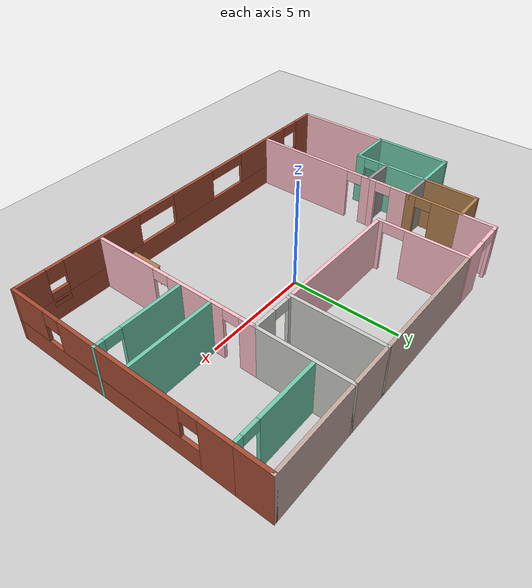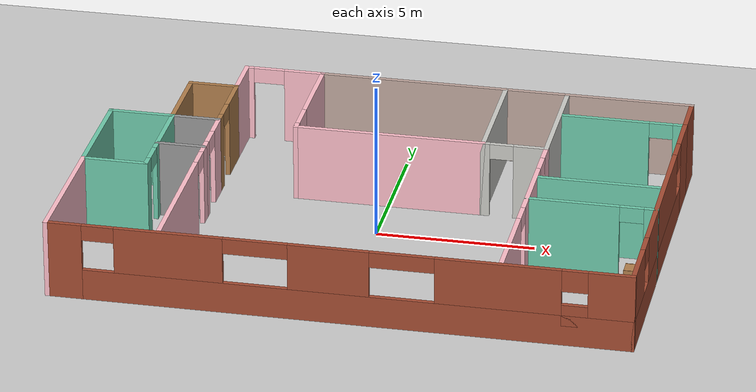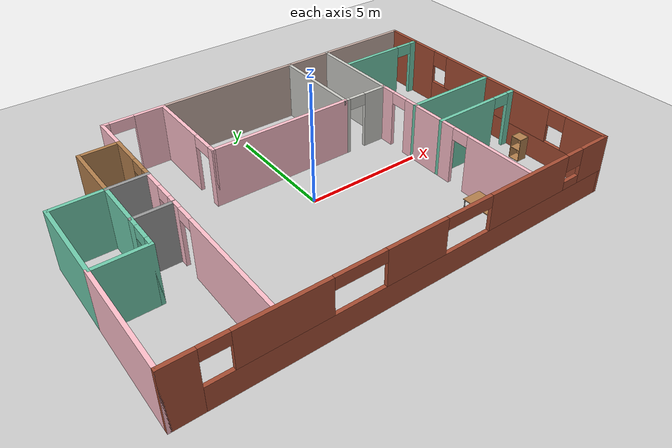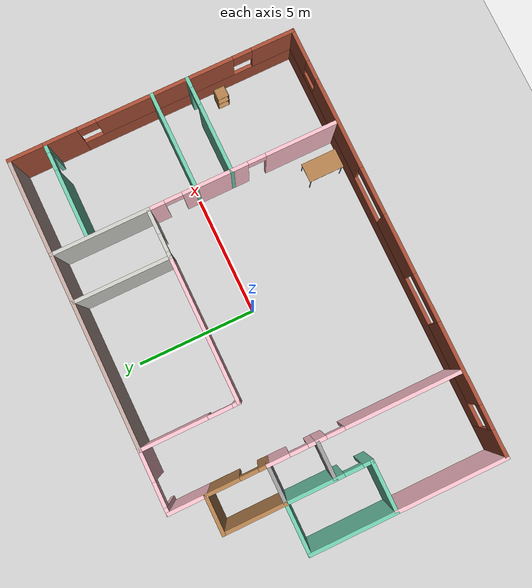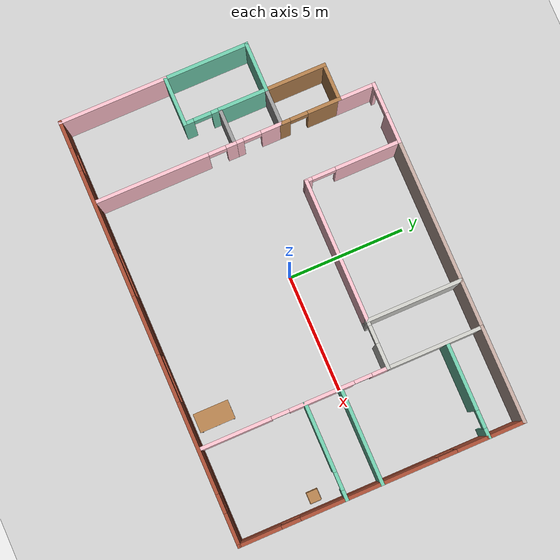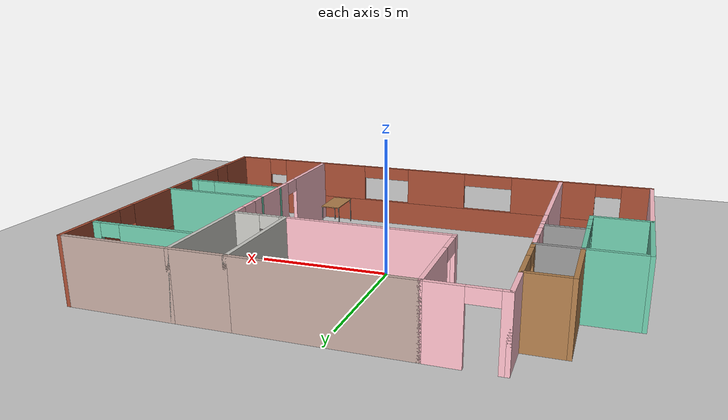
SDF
<sdf version="1.6">
 <world name="default">
  <model name="ground_plane">
   <static>1</static>
   <link name="link">
    <collision name="collision">
     <geometry><plane><normal>0 0 1</normal><size>100 100</size></plane></geometry>
     <surface><friction><ode><mu>100</mu><mu2>50</mu2></ode></friction></surface>
    </collision>
    <visual name="visual">
     <cast_shadows>0</cast_shadows>
     <geometry><plane><normal>0 0 1</normal><size>100 100</size></plane></geometry>
     <material>
      <script><uri>file://media/materials/scripts/gazebo.material</uri><name>Gazebo/Grey</name></script>
     </material>
    </visual>
   </link>
  </model>
  <model name="DaBldg">
   <link name="Wall_0">
    <collision name="Wall_0_Collision">
     <geometry><box><size>4.65 0.15 2.5</size></box></geometry>
     <pose>0 0 1.25 0 -0 0</pose>
    </collision>
    <visual name="Wall_0_Visual">
     <pose>0 0 1.25 0 -0 0</pose>
     <geometry><box><size>4.65 0.15 2.5</size></box></geometry>
     <material>
      <script><uri>file://media/materials/scripts/gazebo.material</uri><name>Gazebo/Grey</name></script>
      <ambient>1 0.752941 0.796078 1</ambient>
     </material>
     <meta><layer>0</layer></meta>
    </visual>
    <pose>-9 -3.75 0 0 -0 1.5708</pose>
   </link>
   <link name="Wall_10">
    <collision name="Wall_10_Collision">
     <geometry><box><size>1.65 0.15 2.5</size></box></geometry>
     <pose>0 0 1.25 0 -0 0</pose>
    </collision>
    <visual name="Wall_10_Visual">
     <pose>0 0 1.25 0 -0 0</pose>
     <geometry><box><size>1.65 0.15 2.5</size></box></geometry>
     <material>
      <script><uri>file://media/materials/scripts/gazebo.material</uri><name>Gazebo/Grey</name></script>
      <ambient>1 1 1 1</ambient>
     </material>
     <meta><layer>0</layer></meta>
    </visual>
    <pose>-6.25 0 0 0 -0 0</pose>
   </link>
   <link name="Wall_12">
    <pose>-5.5 -2.925 0 0 0 -1.5708</pose>
    <visual name="Wall_12_Visual_0">
     <pose>-2.775 0 1.25 0 -0 0</pose>
     <geometry><box><size>0.45 0.15 2.5</size></box></geometry>
     <material>
      <script><uri>file://media/materials/scripts/gazebo.material</uri><name>Gazebo/Grey</name></script>
      <ambient>1 0.752941 0.796078 1</ambient>
     </material>
     <meta><layer>0</layer></meta>
    </visual>
    <collision name="Wall_12_Collision_0">
     <geometry><box><size>0.45 0.15 2.5</size></box></geometry>
     <pose>-2.775 0 1.25 0 -0 0</pose>
    </collision>
    <visual name="Wall_12_Visual_1">
     <pose>0.6 0 1.25 0 -0 0</pose>
     <geometry><box><size>4.8 0.15 2.5</size></box></geometry>
     <material>
      <script><uri>file://media/materials/scripts/gazebo.material</uri><name>Gazebo/Grey</name></script>
      <ambient>1 0.752941 0.796078 1</ambient>
     </material>
     <meta><layer>0</layer></meta>
    </visual>
    <collision name="Wall_12_Collision_1">
     <geometry><box><size>4.8 0.15 2.5</size></box></geometry>
     <pose>0.6 0 1.25 0 -0 0</pose>
    </collision>
    <visual name="Wall_12_Visual_2">
     <pose>-2.175 0 2.25 0 -0 0</pose>
     <geometry><box><size>0.75 0.15 0.5</size></box></geometry>
     <material>
      <script><uri>file://media/materials/scripts/gazebo.material</uri><name>Gazebo/Grey</name></script>
      <ambient>1 0.752941 0.796078 1</ambient>
     </material>
     <meta><layer>0</layer></meta>
    </visual>
    <collision name="Wall_12_Collision_2">
     <geometry><box><size>0.75 0.15 0.5</size></box></geometry>
     <pose>-2.175 0 2.25 0 -0 0</pose>
    </collision>
   </link>
   <link name="Wall_14">
    <collision name="Wall_14_Collision">
     <geometry><box><size>3.65 0.15 2.5</size></box></geometry>
     <pose>0 0 1.25 0 -0 0</pose>
    </collision>
    <visual name="Wall_14_Visual">
     <pose>0 0 1.25 0 -0 0</pose>
     <geometry><box><size>3.65 0.15 2.5</size></box></geometry>
     <material>
      <script><uri>file://media/materials/scripts/gazebo.material</uri><name>Gazebo/Grey</name></script>
      <ambient>0.435294 0.796078 0.67451 1</ambient>
     </material>
     <meta><layer>0</layer></meta>
    </visual>
    <pose>-9 0.25 0 0 -0 1.5708</pose>
   </link>
   <link name="Wall_16">
    <collision name="Wall_16_Collision">
     <geometry><box><size>2.15 0.15 2.5</size></box></geometry>
     <pose>0 0 1.25 0 -0 0</pose>
    </collision>
    <visual name="Wall_16_Visual">
     <pose>0 0 1.25 0 -0 0</pose>
     <geometry><box><size>2.15 0.15 2.5</size></box></geometry>
     <material>
      <script><uri>file://media/materials/scripts/gazebo.material</uri><name>Gazebo/Grey</name></script>
      <ambient>0.435294 0.796078 0.67451 1</ambient>
     </material>
     <meta><layer>0</layer></meta>
    </visual>
    <pose>-8 2 0 0 -0 0</pose>
   </link>
   <link name="Wall_18">
    <collision name="Wall_18_Collision">
     <geometry><box><size>2.15 0.15 2.5</size></box></geometry>
     <pose>0 0 1.25 0 -0 0</pose>
    </collision>
    <visual name="Wall_18_Visual">
     <pose>0 0 1.25 0 -0 0</pose>
     <geometry><box><size>2.15 0.15 2.5</size></box></geometry>
     <material>
      <script><uri>file://media/materials/scripts/gazebo.material</uri><name>Gazebo/Grey</name></script>
      <ambient>0.435294 0.796078 0.67451 1</ambient>
     </material>
     <meta><layer>0</layer></meta>
    </visual>
    <pose>-7 1 0 0 -0 1.5708</pose>
   </link>
   <link name="Wall_2">
    <pose>0 -6 0 0 -0 0</pose>
    <visual name="Wall_2_Visual_0">
     <pose>-8.47605 0 1.25 0 -0 0</pose>
     <geometry><box><size>1.19789 0.15 2.5</size></box></geometry>
     <material>
      <script><uri>file://media/materials/scripts/gazebo.material</uri><name>Gazebo/Bricks</name></script>
      <ambient>1 1 1 1</ambient>
     </material>
     <meta><layer>0</layer></meta>
    </visual>
    <collision name="Wall_2_Collision_0">
     <geometry><box><size>1.19789 0.15 2.5</size></box></geometry>
     <pose>-8.47605 0 1.25 0 -0 0</pose>
    </collision>
    <visual name="Wall_2_Visual_1">
     <pose>0.598946 0 0.5 0 -0 0</pose>
     <geometry><box><size>16.9521 0.15 1</size></box></geometry>
     <material>
      <script><uri>file://media/materials/scripts/gazebo.material</uri><name>Gazebo/Bricks</name></script>
      <ambient>1 1 1 1</ambient>
     </material>
     <meta><layer>0</layer></meta>
    </visual>
    <collision name="Wall_2_Collision_1">
     <geometry><box><size>16.9521 0.15 1</size></box></geometry>
     <pose>0.598946 0 0.5 0 -0 0</pose>
    </collision>
    <visual name="Wall_2_Visual_2">
     <pose>-5.18855 0 1.75 0 -0 0</pose>
     <geometry><box><size>3.37711 0.15 1.5</size></box></geometry>
     <material>
      <script><uri>file://media/materials/scripts/gazebo.material</uri><name>Gazebo/Bricks</name></script>
      <ambient>1 1 1 1</ambient>
     </material>
     <meta><layer>0</layer></meta>
    </visual>
    <collision name="Wall_2_Collision_2">
     <geometry><box><size>3.37711 0.15 1.5</size></box></geometry>
     <pose>-5.18855 0 1.75 0 -0 0</pose>
    </collision>
    <visual name="Wall_2_Visual_3">
     <pose>-0.25 0 1.75 0 -0 0</pose>
     <geometry><box><size>2.5 0.15 1.5</size></box></geometry>
     <material>
      <script><uri>file://media/materials/scripts/gazebo.material</uri><name>Gazebo/Bricks</name></script>
      <ambient>1 1 1 1</ambient>
     </material>
     <meta><layer>0</layer></meta>
    </visual>
    <collision name="Wall_2_Collision_3">
     <geometry><box><size>2.5 0.15 1.5</size></box></geometry>
     <pose>-0.25 0 1.75 0 -0 0</pose>
    </collision>
    <visual name="Wall_2_Visual_4">
     <pose>4.925 0 1.75 0 -0 0</pose>
     <geometry><box><size>3.85 0.15 1.5</size></box></geometry>
     <material>
      <script><uri>file://media/materials/scripts/gazebo.material</uri><name>Gazebo/Bricks</name></script>
      <ambient>1 1 1 1</ambient>
     </material>
     <meta><layer>0</layer></meta>
    </visual>
    <collision name="Wall_2_Collision_4">
     <geometry><box><size>3.85 0.15 1.5</size></box></geometry>
     <pose>4.925 0 1.75 0 -0 0</pose>
    </collision>
    <visual name="Wall_2_Visual_5">
     <pose>8.3625 0 1.75 0 -0 0</pose>
     <geometry><box><size>1.425 0.15 1.5</size></box></geometry>
     <material>
      <script><uri>file://media/materials/scripts/gazebo.material</uri><name>Gazebo/Bricks</name></script>
      <ambient>1 1 1 1</ambient>
     </material>
     <meta><layer>0</layer></meta>
    </visual>
    <collision name="Wall_2_Collision_5">
     <geometry><box><size>1.425 0.15 1.5</size></box></geometry>
     <pose>8.3625 0 1.75 0 -0 0</pose>
    </collision>
    <visual name="Wall_2_Visual_6">
     <pose>7.25 0 1 0 -0 0</pose>
     <geometry><box><size>0.8 0.15 0.7</size></box></geometry>
     <material>
      <script><uri>file://media/materials/scripts/gazebo.material</uri><name>Gazebo/Bricks</name></script>
      <ambient>1 1 1 1</ambient>
     </material>
     <meta><layer>0</layer></meta>
    </visual>
    <collision name="Wall_2_Collision_6">
     <geometry><box><size>0.8 0.15 0.7</size></box></geometry>
     <pose>7.25 0 1 0 -0 0</pose>
    </collision>
    <visual name="Wall_2_Visual_7">
     <pose>7.25 0 2.15 0 -0 0</pose>
     <geometry><box><size>0.8 0.15 0.7</size></box></geometry>
     <material>
      <script><uri>file://media/materials/scripts/gazebo.material</uri><name>Gazebo/Bricks</name></script>
      <ambient>1 1 1 1</ambient>
     </material>
     <meta><layer>0</layer></meta>
    </visual>
    <collision name="Wall_2_Collision_7">
     <geometry><box><size>0.8 0.15 0.7</size></box></geometry>
     <pose>7.25 0 2.15 0 -0 0</pose>
    </collision>
    <visual name="Wall_2_Visual_8">
     <pose>-7.37711 0 2.25 0 -0 0</pose>
     <geometry><box><size>1 0.15 0.5</size></box></geometry>
     <material>
      <script><uri>file://media/materials/scripts/gazebo.material</uri><name>Gazebo/Bricks</name></script>
      <ambient>1 1 1 1</ambient>
     </material>
     <meta><layer>0</layer></meta>
    </visual>
    <collision name="Wall_2_Collision_8">
     <geometry><box><size>1 0.15 0.5</size></box></geometry>
     <pose>-7.37711 0 2.25 0 -0 0</pose>
    </collision>
    <visual name="Wall_2_Visual_9">
     <pose>-2.5 0 2.25 0 -0 0</pose>
     <geometry><box><size>2 0.15 0.5</size></box></geometry>
     <material>
      <script><uri>file://media/materials/scripts/gazebo.material</uri><name>Gazebo/Bricks</name></script>
      <ambient>1 1 1 1</ambient>
     </material>
     <meta><layer>0</layer></meta>
    </visual>
    <collision name="Wall_2_Collision_9">
     <geometry><box><size>2 0.15 0.5</size></box></geometry>
     <pose>-2.5 0 2.25 0 -0 0</pose>
    </collision>
    <visual name="Wall_2_Visual_10">
     <pose>2 0 2.25 0 -0 0</pose>
     <geometry><box><size>2 0.15 0.5</size></box></geometry>
     <material>
      <script><uri>file://media/materials/scripts/gazebo.material</uri><name>Gazebo/Bricks</name></script>
      <ambient>1 1 1 1</ambient>
     </material>
     <meta><layer>0</layer></meta>
    </visual>
    <collision name="Wall_2_Collision_10">
     <geometry><box><size>2 0.15 0.5</size></box></geometry>
     <pose>2 0 2.25 0 -0 0</pose>
    </collision>
   </link>
   <link name="Wall_20">
    <collision name="Wall_20_Collision">
     <geometry><box><size>1.65 0.15 2.5</size></box></geometry>
     <pose>0 0 1.25 0 -0 0</pose>
    </collision>
    <visual name="Wall_20_Visual">
     <pose>0 0 1.25 0 -0 0</pose>
     <geometry><box><size>1.65 0.15 2.5</size></box></geometry>
     <material>
      <script><uri>file://media/materials/scripts/gazebo.material</uri><name>Gazebo/Grey</name></script>
      <ambient>1 1 1 1</ambient>
     </material>
     <meta><layer>0</layer></meta>
    </visual>
    <pose>-6.25 2 0 0 -0 0</pose>
   </link>
   <link name="Wall_22">
    <pose>-5.5 1 0 0 0 -1.5708</pose>
    <visual name="Wall_22_Visual_0">
     <pose>-0.6 0 1.25 0 -0 0</pose>
     <geometry><box><size>0.95 0.15 2.5</size></box></geometry>
     <material>
      <script><uri>file://media/materials/scripts/gazebo.material</uri><name>Gazebo/Grey</name></script>
      <ambient>1 0.752941 0.796078 1</ambient>
     </material>
     <meta><layer>0</layer></meta>
    </visual>
    <collision name="Wall_22_Collision_0">
     <geometry><box><size>0.95 0.15 2.5</size></box></geometry>
     <pose>-0.6 0 1.25 0 -0 0</pose>
    </collision>
    <visual name="Wall_22_Visual_1">
     <pose>0.85 0 1.25 0 -0 0</pose>
     <geometry><box><size>0.45 0.15 2.5</size></box></geometry>
     <material>
      <script><uri>file://media/materials/scripts/gazebo.material</uri><name>Gazebo/Grey</name></script>
      <ambient>1 0.752941 0.796078 1</ambient>
     </material>
     <meta><layer>0</layer></meta>
    </visual>
    <collision name="Wall_22_Collision_1">
     <geometry><box><size>0.45 0.15 2.5</size></box></geometry>
     <pose>0.85 0 1.25 0 -0 0</pose>
    </collision>
    <visual name="Wall_22_Visual_2">
     <pose>0.25 0 2.25 0 -0 0</pose>
     <geometry><box><size>0.75 0.15 0.5</size></box></geometry>
     <material>
      <script><uri>file://media/materials/scripts/gazebo.material</uri><name>Gazebo/Grey</name></script>
      <ambient>1 0.752941 0.796078 1</ambient>
     </material>
     <meta><layer>0</layer></meta>
    </visual>
    <collision name="Wall_22_Collision_2">
     <geometry><box><size>0.75 0.15 0.5</size></box></geometry>
     <pose>0.25 0 2.25 0 -0 0</pose>
    </collision>
   </link>
   <link name="Wall_24">
    <pose>-5.5 3.25 0 0 -0 1.5708</pose>
    <visual name="Wall_24_Visual_0">
     <pose>-1.09518 0 1.25 0 -0 0</pose>
     <geometry><box><size>0.459635 0.15 2.5</size></box></geometry>
     <material>
      <script><uri>file://media/materials/scripts/gazebo.material</uri><name>Gazebo/Wood</name></script>
      <ambient>1 1 1 1</ambient>
     </material>
     <meta><layer>0</layer></meta>
    </visual>
    <collision name="Wall_24_Collision_0">
     <geometry><box><size>0.459635 0.15 2.5</size></box></geometry>
     <pose>-1.09518 0 1.25 0 -0 0</pose>
    </collision>
    <visual name="Wall_24_Visual_1">
     <pose>0.604817 0 1.25 0 -0 0</pose>
     <geometry><box><size>1.44036 0.15 2.5</size></box></geometry>
     <material>
      <script><uri>file://media/materials/scripts/gazebo.material</uri><name>Gazebo/Wood</name></script>
      <ambient>1 1 1 1</ambient>
     </material>
     <meta><layer>0</layer></meta>
    </visual>
    <collision name="Wall_24_Collision_1">
     <geometry><box><size>1.44036 0.15 2.5</size></box></geometry>
     <pose>0.604817 0 1.25 0 -0 0</pose>
    </collision>
    <visual name="Wall_24_Visual_2">
     <pose>-0.490365 0 2.25 0 -0 0</pose>
     <geometry><box><size>0.75 0.15 0.5</size></box></geometry>
     <material>
      <script><uri>file://media/materials/scripts/gazebo.material</uri><name>Gazebo/Wood</name></script>
      <ambient>1 1 1 1</ambient>
     </material>
     <meta><layer>0</layer></meta>
    </visual>
    <collision name="Wall_24_Collision_2">
     <geometry><box><size>0.75 0.15 0.5</size></box></geometry>
     <pose>-0.490365 0 2.25 0 -0 0</pose>
    </collision>
   </link>
   <link name="Wall_38">
    <collision name="Wall_38_Collision">
     <geometry><box><size>2.65 0.15 2.5</size></box></geometry>
     <pose>0 0 1.25 0 -0 0</pose>
    </collision>
    <visual name="Wall_38_Visual">
     <pose>0 0 1.25 0 -0 0</pose>
     <geometry><box><size>2.65 0.15 2.5</size></box></geometry>
     <material>
      <script><uri>file://media/materials/scripts/gazebo.material</uri><name>Gazebo/Wood</name></script>
      <ambient>0.760784 0.662745 0.627451 1</ambient>
     </material>
     <meta><layer>0</layer></meta>
    </visual>
    <pose>-7 3.25 0 0 -0 1.5708</pose>
   </link>
   <link name="Wall_40">
    <collision name="Wall_40_Collision">
     <geometry><box><size>1.65 0.15 2.5</size></box></geometry>
     <pose>0 0 1.25 0 -0 0</pose>
    </collision>
    <visual name="Wall_40_Visual">
     <pose>0 0 1.25 0 -0 0</pose>
     <geometry><box><size>1.65 0.15 2.5</size></box></geometry>
     <material>
      <script><uri>file://media/materials/scripts/gazebo.material</uri><name>Gazebo/Wood</name></script>
      <ambient>1 1 1 1</ambient>
     </material>
     <meta><layer>0</layer></meta>
    </visual>
    <pose>-6.25 4.5 0 0 -0 0</pose>
   </link>
   <link name="Wall_44">
    <collision name="Wall_44_Collision">
     <geometry><box><size>1.65 0.15 2.5</size></box></geometry>
     <pose>0 0 1.25 0 -0 0</pose>
    </collision>
    <visual name="Wall_44_Visual">
     <pose>0 0 1.25 0 -0 0</pose>
     <geometry><box><size>1.65 0.15 2.5</size></box></geometry>
     <material>
      <script><uri>file://media/materials/scripts/gazebo.material</uri><name>Gazebo/Grey</name></script>
      <ambient>1 0.752941 0.796078 1</ambient>
     </material>
     <meta><layer>0</layer></meta>
    </visual>
    <pose>-5.5 5.25 0 0 -0 1.5708</pose>
   </link>
   <link name="Wall_47">
    <pose>-4.25 6 0 0 -0 0</pose>
    <visual name="Wall_47_Visual_0">
     <pose>-1.1625 0 1.25 0 -0 0</pose>
     <geometry><box><size>0.325 0.15 2.5</size></box></geometry>
     <material>
      <script><uri>file://media/materials/scripts/gazebo.material</uri><name>Gazebo/Grey</name></script>
      <ambient>1 0.752941 0.796078 1</ambient>
     </material>
     <meta><layer>0</layer></meta>
    </visual>
    <collision name="Wall_47_Collision_0">
     <geometry><box><size>0.325 0.15 2.5</size></box></geometry>
     <pose>-1.1625 0 1.25 0 -0 0</pose>
    </collision>
    <visual name="Wall_47_Visual_1">
     <pose>0.6625 0 1.25 0 -0 0</pose>
     <geometry><box><size>1.325 0.15 2.5</size></box></geometry>
     <material>
      <script><uri>file://media/materials/scripts/gazebo.material</uri><name>Gazebo/Grey</name></script>
      <ambient>1 0.752941 0.796078 1</ambient>
     </material>
     <meta><layer>0</layer></meta>
    </visual>
    <collision name="Wall_47_Collision_1">
     <geometry><box><size>1.325 0.15 2.5</size></box></geometry>
     <pose>0.6625 0 1.25 0 -0 0</pose>
    </collision>
    <visual name="Wall_47_Visual_2">
     <pose>-0.5 0 2.25 0 -0 0</pose>
     <geometry><box><size>1 0.15 0.5</size></box></geometry>
     <material>
      <script><uri>file://media/materials/scripts/gazebo.material</uri><name>Gazebo/Grey</name></script>
      <ambient>1 0.752941 0.796078 1</ambient>
     </material>
     <meta><layer>0</layer></meta>
    </visual>
    <collision name="Wall_47_Collision_2">
     <geometry><box><size>1 0.15 0.5</size></box></geometry>
     <pose>-0.5 0 2.25 0 -0 0</pose>
    </collision>
   </link>
   <link name="Wall_50">
    <pose>-3 4 0 0 0 -1.5708</pose>
    <visual name="Wall_50_Visual_0">
     <pose>-0.6625 0 1.25 0 -0 0</pose>
     <geometry><box><size>2.825 0.15 2.5</size></box></geometry>
     <material>
      <script><uri>file://media/materials/scripts/gazebo.material</uri><name>Gazebo/Grey</name></script>
      <ambient>1 0.752941 0.796078 1</ambient>
     </material>
     <meta><layer>0</layer></meta>
    </visual>
    <collision name="Wall_50_Collision_0">
     <geometry><box><size>2.825 0.15 2.5</size></box></geometry>
     <pose>-0.6625 0 1.25 0 -0 0</pose>
    </collision>
    <visual name="Wall_50_Visual_1">
     <pose>1.9125 0 1.25 0 -0 0</pose>
     <geometry><box><size>0.325 0.15 2.5</size></box></geometry>
     <material>
      <script><uri>file://media/materials/scripts/gazebo.material</uri><name>Gazebo/Grey</name></script>
      <ambient>1 0.752941 0.796078 1</ambient>
     </material>
     <meta><layer>0</layer></meta>
    </visual>
    <collision name="Wall_50_Collision_1">
     <geometry><box><size>0.325 0.15 2.5</size></box></geometry>
     <pose>1.9125 0 1.25 0 -0 0</pose>
    </collision>
    <visual name="Wall_50_Visual_2">
     <pose>1.25 0 2.25 0 -0 0</pose>
     <geometry><box><size>1 0.15 0.5</size></box></geometry>
     <material>
      <script><uri>file://media/materials/scripts/gazebo.material</uri><name>Gazebo/Grey</name></script>
      <ambient>1 0.752941 0.796078 1</ambient>
     </material>
     <meta><layer>0</layer></meta>
    </visual>
    <collision name="Wall_50_Collision_2">
     <geometry><box><size>1 0.15 0.5</size></box></geometry>
     <pose>1.25 0 2.25 0 -0 0</pose>
    </collision>
   </link>
   <link name="Wall_52">
    <collision name="Wall_52_Collision">
     <geometry><box><size>6.15 0.15 2.5</size></box></geometry>
     <pose>0 0 1.25 0 -0 0</pose>
    </collision>
    <visual name="Wall_52_Visual">
     <pose>0 0 1.25 0 -0 0</pose>
     <geometry><box><size>6.15 0.15 2.5</size></box></geometry>
     <material>
      <script><uri>file://media/materials/scripts/gazebo.material</uri><name>Gazebo/Grey</name></script>
      <ambient>0.760784 0.662745 0.627451 1</ambient>
     </material>
     <meta><layer>0</layer></meta>
    </visual>
    <pose>0 6 0 0 -0 0</pose>
   </link>
   <link name="Wall_54">
    <collision name="Wall_54_Collision">
     <geometry><box><size>4.15 0.15 2.5</size></box></geometry>
     <pose>0 0 1.25 0 -0 0</pose>
    </collision>
    <visual name="Wall_54_Visual">
     <pose>0 0 1.25 0 -0 0</pose>
     <geometry><box><size>4.15 0.15 2.5</size></box></geometry>
     <material>
      <script><uri>file://media/materials/scripts/gazebo.material</uri><name>Gazebo/CeilingTiled</name></script>
      <ambient>1 1 1 1</ambient>
     </material>
     <meta><layer>0</layer></meta>
    </visual>
    <pose>3 4 0 0 0 -1.5708</pose>
   </link>
   <link name="Wall_57">
    <collision name="Wall_57_Collision">
     <geometry><box><size>6.15 0.15 2.5</size></box></geometry>
     <pose>0 0 1.25 0 -0 0</pose>
    </collision>
    <visual name="Wall_57_Visual">
     <pose>0 0 1.25 0 -0 0</pose>
     <geometry><box><size>6.15 0.15 2.5</size></box></geometry>
     <material>
      <script><uri>file://media/materials/scripts/gazebo.material</uri><name>Gazebo/Grey</name></script>
      <ambient>1 0.752941 0.796078 1</ambient>
     </material>
     <meta><layer>0</layer></meta>
    </visual>
    <pose>0 2 0 0 -0 0</pose>
   </link>
   <link name="Wall_59">
    <collision name="Wall_59_Collision">
     <geometry><box><size>2.15 0.15 2.5</size></box></geometry>
     <pose>0 0 1.25 0 -0 0</pose>
    </collision>
    <visual name="Wall_59_Visual">
     <pose>0 0 1.25 0 -0 0</pose>
     <geometry><box><size>2.15 0.15 2.5</size></box></geometry>
     <material>
      <script><uri>file://media/materials/scripts/gazebo.material</uri><name>Gazebo/Grey</name></script>
      <ambient>0.760784 0.662745 0.627451 1</ambient>
     </material>
     <meta><layer>0</layer></meta>
    </visual>
    <pose>4 6 0 0 -0 0</pose>
   </link>
   <link name="Wall_6">
    <collision name="Wall_6_Collision">
     <geometry><box><size>2.15 0.15 2.5</size></box></geometry>
     <pose>0 0 1.25 0 -0 0</pose>
    </collision>
    <visual name="Wall_6_Visual">
     <pose>0 0 1.25 0 -0 0</pose>
     <geometry><box><size>2.15 0.15 2.5</size></box></geometry>
     <material>
      <script><uri>file://media/materials/scripts/gazebo.material</uri><name>Gazebo/Grey</name></script>
      <ambient>0.435294 0.796078 0.67451 1</ambient>
     </material>
     <meta><layer>0</layer></meta>
    </visual>
    <pose>-8 -1.5 0 0 -0 0</pose>
   </link>
   <link name="Wall_61">
    <collision name="Wall_61_Collision">
     <geometry><box><size>4.15 0.15 2.5</size></box></geometry>
     <pose>0 0 1.25 0 -0 0</pose>
    </collision>
    <visual name="Wall_61_Visual">
     <pose>0 0 1.25 0 -0 0</pose>
     <geometry><box><size>4.15 0.15 2.5</size></box></geometry>
     <material>
      <script><uri>file://media/materials/scripts/gazebo.material</uri><name>Gazebo/CeilingTiled</name></script>
      <ambient>1 1 1 1</ambient>
     </material>
     <meta><layer>0</layer></meta>
    </visual>
    <pose>5 4 0 0 0 -1.5708</pose>
   </link>
   <link name="Wall_65">
    <pose>4 2 0 0 -0 0</pose>
    <visual name="Wall_65_Visual_0">
     <pose>-0.928066 0 1.25 0 -0 0</pose>
     <geometry><box><size>0.293867 0.15 2.5</size></box></geometry>
     <material>
      <script><uri>file://media/materials/scripts/gazebo.material</uri><name>Gazebo/CeilingTiled</name></script>
      <ambient>1 1 1 1</ambient>
     </material>
     <meta><layer>0</layer></meta>
    </visual>
    <collision name="Wall_65_Collision_0">
     <geometry><box><size>0.293867 0.15 2.5</size></box></geometry>
     <pose>-0.928066 0 1.25 0 -0 0</pose>
    </collision>
    <visual name="Wall_65_Visual_1">
     <pose>0.521934 0 1.25 0 -0 0</pose>
     <geometry><box><size>1.10613 0.15 2.5</size></box></geometry>
     <material>
      <script><uri>file://media/materials/scripts/gazebo.material</uri><name>Gazebo/CeilingTiled</name></script>
      <ambient>1 1 1 1</ambient>
     </material>
     <meta><layer>0</layer></meta>
    </visual>
    <collision name="Wall_65_Collision_1">
     <geometry><box><size>1.10613 0.15 2.5</size></box></geometry>
     <pose>0.521934 0 1.25 0 -0 0</pose>
    </collision>
    <visual name="Wall_65_Visual_2">
     <pose>-0.406133 0 2.25 0 -0 0</pose>
     <geometry><box><size>0.75 0.15 0.5</size></box></geometry>
     <material>
      <script><uri>file://media/materials/scripts/gazebo.material</uri><name>Gazebo/CeilingTiled</name></script>
      <ambient>1 1 1 1</ambient>
     </material>
     <meta><layer>0</layer></meta>
    </visual>
    <collision name="Wall_65_Collision_2">
     <geometry><box><size>0.75 0.15 0.5</size></box></geometry>
     <pose>-0.406133 0 2.25 0 -0 0</pose>
    </collision>
   </link>
   <link name="Wall_67">
    <collision name="Wall_67_Collision">
     <geometry><box><size>4.15 0.15 2.5</size></box></geometry>
     <pose>0 0 1.25 0 -0 0</pose>
    </collision>
    <visual name="Wall_67_Visual">
     <pose>0 0 1.25 0 -0 0</pose>
     <geometry><box><size>4.15 0.15 2.5</size></box></geometry>
     <material>
      <script><uri>file://media/materials/scripts/gazebo.material</uri><name>Gazebo/Grey</name></script>
      <ambient>0.760784 0.662745 0.627451 1</ambient>
     </material>
     <meta><layer>0</layer></meta>
    </visual>
    <pose>7 6 0 0 -0 0</pose>
   </link>
   <link name="Wall_69">
    <collision name="Wall_69_Collision">
     <geometry><box><size>1.65 0.15 2.5</size></box></geometry>
     <pose>0 0 1.25 0 -0 0</pose>
    </collision>
    <visual name="Wall_69_Visual">
     <pose>0 0 1.25 0 -0 0</pose>
     <geometry><box><size>1.65 0.15 2.5</size></box></geometry>
     <material>
      <script><uri>file://media/materials/scripts/gazebo.material</uri><name>Gazebo/Bricks</name></script>
      <ambient>0.760784 0.662745 0.627451 1</ambient>
     </material>
     <meta><layer>0</layer></meta>
    </visual>
    <pose>9 5.25 0 0 0 -1.5708</pose>
   </link>
   <link name="Wall_72">
    <pose>7.075 4.5 0 0 -0 3.14159</pose>
    <visual name="Wall_72_Visual_0">
     <pose>-1.775 0 1.25 0 -0 0</pose>
     <geometry><box><size>0.450001 0.15 2.5</size></box></geometry>
     <material>
      <script><uri>file://media/materials/scripts/gazebo.material</uri><name>Gazebo/Grey</name></script>
      <ambient>0.435294 0.796078 0.67451 1</ambient>
     </material>
     <meta><layer>0</layer></meta>
    </visual>
    <collision name="Wall_72_Collision_0">
     <geometry><box><size>0.450001 0.15 2.5</size></box></geometry>
     <pose>-1.775 0 1.25 0 -0 0</pose>
    </collision>
    <visual name="Wall_72_Visual_1">
     <pose>0.6 0 1.25 0 -0 0</pose>
     <geometry><box><size>2.8 0.15 2.5</size></box></geometry>
     <material>
      <script><uri>file://media/materials/scripts/gazebo.material</uri><name>Gazebo/Grey</name></script>
      <ambient>0.435294 0.796078 0.67451 1</ambient>
     </material>
     <meta><layer>0</layer></meta>
    </visual>
    <collision name="Wall_72_Collision_1">
     <geometry><box><size>2.8 0.15 2.5</size></box></geometry>
     <pose>0.6 0 1.25 0 -0 0</pose>
    </collision>
    <visual name="Wall_72_Visual_2">
     <pose>-1.175 0 2.25 0 -0 0</pose>
     <geometry><box><size>0.75 0.15 0.5</size></box></geometry>
     <material>
      <script><uri>file://media/materials/scripts/gazebo.material</uri><name>Gazebo/Grey</name></script>
      <ambient>0.435294 0.796078 0.67451 1</ambient>
     </material>
     <meta><layer>0</layer></meta>
    </visual>
    <collision name="Wall_72_Collision_2">
     <geometry><box><size>0.75 0.15 0.5</size></box></geometry>
     <pose>-1.175 0 2.25 0 -0 0</pose>
    </collision>
   </link>
   <link name="Wall_74">
    <pose>9 -0.75 0 0 0 -1.5708</pose>
    <visual name="Wall_74_Visual_0">
     <pose>-4.61614 0 1.25 0 -0 0</pose>
     <geometry><box><size>1.41772 0.15 2.5</size></box></geometry>
     <material>
      <script><uri>file://media/materials/scripts/gazebo.material</uri><name>Gazebo/Bricks</name></script>
      <ambient>1 1 1 1</ambient>
     </material>
     <meta><layer>0</layer></meta>
    </visual>
    <collision name="Wall_74_Collision_0">
     <geometry><box><size>1.41772 0.15 2.5</size></box></geometry>
     <pose>-4.61614 0 1.25 0 -0 0</pose>
    </collision>
    <visual name="Wall_74_Visual_1">
     <pose>0.708862 0 0.5 0 -0 0</pose>
     <geometry><box><size>9.23228 0.15 1</size></box></geometry>
     <material>
      <script><uri>file://media/materials/scripts/gazebo.material</uri><name>Gazebo/Bricks</name></script>
      <ambient>1 1 1 1</ambient>
     </material>
     <meta><layer>0</layer></meta>
    </visual>
    <collision name="Wall_74_Collision_1">
     <geometry><box><size>9.23228 0.15 1</size></box></geometry>
     <pose>0.708862 0 0.5 0 -0 0</pose>
    </collision>
    <visual name="Wall_74_Visual_2">
     <pose>-0.215535 0 1.75 0 -0 0</pose>
     <geometry><box><size>5.78348 0.15 1.5</size></box></geometry>
     <material>
      <script><uri>file://media/materials/scripts/gazebo.material</uri><name>Gazebo/Bricks</name></script>
      <ambient>1 1 1 1</ambient>
     </material>
     <meta><layer>0</layer></meta>
    </visual>
    <collision name="Wall_74_Collision_2">
     <geometry><box><size>5.78348 0.15 1.5</size></box></geometry>
     <pose>-0.215535 0 1.75 0 -0 0</pose>
    </collision>
    <visual name="Wall_74_Visual_3">
     <pose>4.4006 0 1.75 0 -0 0</pose>
     <geometry><box><size>1.84879 0.15 1.5</size></box></geometry>
     <material>
      <script><uri>file://media/materials/scripts/gazebo.material</uri><name>Gazebo/Bricks</name></script>
      <ambient>1 1 1 1</ambient>
     </material>
     <meta><layer>0</layer></meta>
    </visual>
    <collision name="Wall_74_Collision_3">
     <geometry><box><size>1.84879 0.15 1.5</size></box></geometry>
     <pose>4.4006 0 1.75 0 -0 0</pose>
    </collision>
    <visual name="Wall_74_Visual_4">
     <pose>-3.50728 0 2.15 0 -0 0</pose>
     <geometry><box><size>0.8 0.15 0.7</size></box></geometry>
     <material>
      <script><uri>file://media/materials/scripts/gazebo.material</uri><name>Gazebo/Bricks</name></script>
      <ambient>1 1 1 1</ambient>
     </material>
     <meta><layer>0</layer></meta>
    </visual>
    <collision name="Wall_74_Collision_4">
     <geometry><box><size>0.8 0.15 0.7</size></box></geometry>
     <pose>-3.50728 0 2.15 0 -0 0</pose>
    </collision>
    <visual name="Wall_74_Visual_5">
     <pose>3.07621 0 2.15 0 -0 0</pose>
     <geometry><box><size>0.8 0.15 0.7</size></box></geometry>
     <material>
      <script><uri>file://media/materials/scripts/gazebo.material</uri><name>Gazebo/Bricks</name></script>
      <ambient>1 1 1 1</ambient>
     </material>
     <meta><layer>0</layer></meta>
    </visual>
    <collision name="Wall_74_Collision_5">
     <geometry><box><size>0.8 0.15 0.7</size></box></geometry>
     <pose>3.07621 0 2.15 0 -0 0</pose>
    </collision>
   </link>
   <link name="Wall_76">
    <pose>5 -1.925 0 0 0 -1.5708</pose>
    <visual name="Wall_76_Visual_0">
     <pose>-3.62243 0 1.25 0 -0 0</pose>
     <geometry><box><size>0.755143 0.15 2.5</size></box></geometry>
     <material>
      <script><uri>file://media/materials/scripts/gazebo.material</uri><name>Gazebo/Grey</name></script>
      <ambient>1 0.752941 0.796078 1</ambient>
     </material>
     <meta><layer>0</layer></meta>
    </visual>
    <collision name="Wall_76_Collision_0">
     <geometry><box><size>0.755143 0.15 2.5</size></box></geometry>
     <pose>-3.62243 0 1.25 0 -0 0</pose>
    </collision>
    <visual name="Wall_76_Visual_1">
     <pose>-1.11937 0 1.25 0 -0 0</pose>
     <geometry><box><size>2.75097 0.15 2.5</size></box></geometry>
     <material>
      <script><uri>file://media/materials/scripts/gazebo.material</uri><name>Gazebo/Grey</name></script>
      <ambient>1 0.752941 0.796078 1</ambient>
     </material>
     <meta><layer>0</layer></meta>
    </visual>
    <collision name="Wall_76_Collision_1">
     <geometry><box><size>2.75097 0.15 2.5</size></box></geometry>
     <pose>-1.11937 0 1.25 0 -0 0</pose>
    </collision>
    <visual name="Wall_76_Visual_2">
     <pose>2.50306 0 1.25 0 -0 0</pose>
     <geometry><box><size>2.99388 0.15 2.5</size></box></geometry>
     <material>
      <script><uri>file://media/materials/scripts/gazebo.material</uri><name>Gazebo/Grey</name></script>
      <ambient>1 0.752941 0.796078 1</ambient>
     </material>
     <meta><layer>0</layer></meta>
    </visual>
    <collision name="Wall_76_Collision_2">
     <geometry><box><size>2.99388 0.15 2.5</size></box></geometry>
     <pose>2.50306 0 1.25 0 -0 0</pose>
    </collision>
    <visual name="Wall_76_Visual_3">
     <pose>-2.86986 0 2.25 0 -0 0</pose>
     <geometry><box><size>0.75 0.15 0.5</size></box></geometry>
     <material>
      <script><uri>file://media/materials/scripts/gazebo.material</uri><name>Gazebo/Grey</name></script>
      <ambient>1 0.752941 0.796078 1</ambient>
     </material>
     <meta><layer>0</layer></meta>
    </visual>
    <collision name="Wall_76_Collision_3">
     <geometry><box><size>0.75 0.15 0.5</size></box></geometry>
     <pose>-2.86986 0 2.25 0 -0 0</pose>
    </collision>
    <visual name="Wall_76_Visual_4">
     <pose>0.631118 0 2.25 0 -0 0</pose>
     <geometry><box><size>0.75 0.15 0.5</size></box></geometry>
     <material>
      <script><uri>file://media/materials/scripts/gazebo.material</uri><name>Gazebo/Grey</name></script>
      <ambient>1 0.752941 0.796078 1</ambient>
     </material>
     <meta><layer>0</layer></meta>
    </visual>
    <collision name="Wall_76_Collision_4">
     <geometry><box><size>0.75 0.15 0.5</size></box></geometry>
     <pose>0.631118 0 2.25 0 -0 0</pose>
    </collision>
   </link>
   <link name="Wall_8">
    <pose>-7 -0.75 0 0 -0 1.5708</pose>
    <visual name="Wall_8_Visual_0">
     <pose>-0.6 0 1.25 0 -0 0</pose>
     <geometry><box><size>0.45 0.15 2.5</size></box></geometry>
     <material>
      <script><uri>file://media/materials/scripts/gazebo.material</uri><name>Gazebo/Grey</name></script>
      <ambient>0.435294 0.796078 0.67451 1</ambient>
     </material>
     <meta><layer>0</layer></meta>
    </visual>
    <collision name="Wall_8_Collision_0">
     <geometry><box><size>0.45 0.15 2.5</size></box></geometry>
     <pose>-0.6 0 1.25 0 -0 0</pose>
    </collision>
    <visual name="Wall_8_Visual_1">
     <pose>0.6 0 1.25 0 -0 0</pose>
     <geometry><box><size>0.45 0.15 2.5</size></box></geometry>
     <material>
      <script><uri>file://media/materials/scripts/gazebo.material</uri><name>Gazebo/Grey</name></script>
      <ambient>0.435294 0.796078 0.67451 1</ambient>
     </material>
     <meta><layer>0</layer></meta>
    </visual>
    <collision name="Wall_8_Collision_1">
     <geometry><box><size>0.45 0.15 2.5</size></box></geometry>
     <pose>0.6 0 1.25 0 -0 0</pose>
    </collision>
    <visual name="Wall_8_Visual_2">
     <pose>0 0 2.25 0 -0 0</pose>
     <geometry><box><size>0.75 0.15 0.5</size></box></geometry>
     <material>
      <script><uri>file://media/materials/scripts/gazebo.material</uri><name>Gazebo/Grey</name></script>
      <ambient>0.435294 0.796078 0.67451 1</ambient>
     </material>
     <meta><layer>0</layer></meta>
    </visual>
    <collision name="Wall_8_Collision_2">
     <geometry><box><size>0.75 0.15 0.5</size></box></geometry>
     <pose>0 0 2.25 0 -0 0</pose>
    </collision>
   </link>
   <link name="Wall_80">
    <collision name="Wall_80_Collision">
     <geometry><box><size>4.15 0.15 2.5</size></box></geometry>
     <pose>0 0 1.25 0 -0 0</pose>
    </collision>
    <visual name="Wall_80_Visual">
     <pose>0 0 1.25 0 -0 0</pose>
     <geometry><box><size>4.15 0.15 2.5</size></box></geometry>
     <material>
      <script><uri>file://media/materials/scripts/gazebo.material</uri><name>Gazebo/Grey</name></script>
      <ambient>0.435294 0.796078 0.67451 1</ambient>
     </material>
     <meta><layer>0</layer></meta>
    </visual>
    <pose>7 0 0 0 -0 0</pose>
   </link>
   <link name="Wall_82">
    <pose>7 -1.5 0 0 -0 0</pose>
    <visual name="Wall_82_Visual_0">
     <pose>-0.6 0 1.25 0 -0 0</pose>
     <geometry><box><size>2.95 0.15 2.5</size></box></geometry>
     <material>
      <script><uri>file://media/materials/scripts/gazebo.material</uri><name>Gazebo/Grey</name></script>
      <ambient>0.435294 0.796078 0.67451 1</ambient>
     </material>
     <meta><layer>0</layer></meta>
    </visual>
    <collision name="Wall_82_Collision_0">
     <geometry><box><size>2.95 0.15 2.5</size></box></geometry>
     <pose>-0.6 0 1.25 0 -0 0</pose>
    </collision>
    <visual name="Wall_82_Visual_1">
     <pose>1.85 0 1.25 0 -0 0</pose>
     <geometry><box><size>0.45 0.15 2.5</size></box></geometry>
     <material>
      <script><uri>file://media/materials/scripts/gazebo.material</uri><name>Gazebo/Grey</name></script>
      <ambient>0.435294 0.796078 0.67451 1</ambient>
     </material>
     <meta><layer>0</layer></meta>
    </visual>
    <collision name="Wall_82_Collision_1">
     <geometry><box><size>0.45 0.15 2.5</size></box></geometry>
     <pose>1.85 0 1.25 0 -0 0</pose>
    </collision>
    <visual name="Wall_82_Visual_2">
     <pose>1.25 0 2.25 0 -0 0</pose>
     <geometry><box><size>0.75 0.15 0.5</size></box></geometry>
     <material>
      <script><uri>file://media/materials/scripts/gazebo.material</uri><name>Gazebo/Grey</name></script>
      <ambient>0.435294 0.796078 0.67451 1</ambient>
     </material>
     <meta><layer>0</layer></meta>
    </visual>
    <collision name="Wall_82_Collision_2">
     <geometry><box><size>0.75 0.15 0.5</size></box></geometry>
     <pose>1.25 0 2.25 0 -0 0</pose>
    </collision>
   </link>
   <static>1</static>
  </model>
  <model name="table">
   <static>1</static>
   <link name="link">
    <collision name="surface">
     <pose>0 0 1 0 -0 0</pose>
     <geometry><box><size>1.5 0.8 0.03</size></box></geometry>
     <surface><friction><ode><mu>0.6</mu><mu2>0.6</mu2></ode></friction></surface>
    </collision>
    <visual name="visual1">
     <pose>0 0 1 0 -0 0</pose>
     <geometry><box><size>1.5 0.8 0.03</size></box></geometry>
     <material>
      <script><uri>file://media/materials/scripts/gazebo.material</uri><name>Gazebo/Wood</name></script>
     </material>
    </visual>
    <collision name="front_left_leg">
     <pose>0.68 0.38 0.5 0 -0 0</pose>
     <geometry><cylinder><radius>0.02</radius><length>1</length></cylinder></geometry>
    </collision>
    <visual name="front_left_leg">
     <pose>0.68 0.38 0.5 0 -0 0</pose>
     <geometry><cylinder><radius>0.02</radius><length>1</length></cylinder></geometry>
     <material>
      <script><uri>file://media/materials/scripts/gazebo.material</uri><name>Gazebo/Grey</name></script>
     </material>
    </visual>
    <collision name="front_right_leg">
     <pose>0.68 -0.38 0.5 0 -0 0</pose>
     <geometry><cylinder><radius>0.02</radius><length>1</length></cylinder></geometry>
    </collision>
    <visual name="front_right_leg">
     <pose>0.68 -0.38 0.5 0 -0 0</pose>
     <geometry><cylinder><radius>0.02</radius><length>1</length></cylinder></geometry>
     <material>
      <script><uri>file://media/materials/scripts/gazebo.material</uri><name>Gazebo/Grey</name></script>
     </material>
    </visual>
    <collision name="back_right_leg">
     <pose>-0.68 -0.38 0.5 0 -0 0</pose>
     <geometry><cylinder><radius>0.02</radius><length>1</length></cylinder></geometry>
    </collision>
    <visual name="back_right_leg">
     <pose>-0.68 -0.38 0.5 0 -0 0</pose>
     <geometry><cylinder><radius>0.02</radius><length>1</length></cylinder></geometry>
     <material>
      <script><uri>file://media/materials/scripts/gazebo.material</uri><name>Gazebo/Grey</name></script>
     </material>
    </visual>
    <collision name="back_left_leg">
     <pose>-0.68 0.38 0.5 0 -0 0</pose>
     <geometry><cylinder><radius>0.02</radius><length>1</length></cylinder></geometry>
    </collision>
    <visual name="back_left_leg">
     <pose>-0.68 0.38 0.5 0 -0 0</pose>
     <geometry><cylinder><radius>0.02</radius><length>1</length></cylinder></geometry>
     <material>
      <script><uri>file://media/materials/scripts/gazebo.material</uri><name>Gazebo/Grey</name></script>
     </material>
    </visual>
   </link>
   <pose>4 -5 0 0 -0 1.57</pose>
  </model>
  <model name="cabinet_0">
   <static>1</static>
   <link name="cabinet_bottom_plate">
    <inertial>
     <pose>0 0 -1 0 -0 0</pose>
     <inertia><ixx>2.05</ixx><ixy>0</ixy><ixz>0</ixz><iyy>2.05</iyy><iyz>0</iyz><izz>2.05</izz></inertia>
     <mass>25</mass>
    </inertial>
    <collision name="cabinet_bottom_plate_geom">
     <pose>0 0 0.01 0 -0 0</pose>
     <geometry><box><size>0.45 0.45 0.02</size></box></geometry>
    </collision>
    <visual name="cabinet_bottom_plate_geom_visual">
     <pose>0 0 0.01 0 -0 0</pose>
     <geometry><box><size>0.45 0.45 0.02</size></box></geometry>
     <material>
      <script><uri>file://media/materials/scripts/gazebo.material</uri><name>Gazebo/Wood</name></script>
     </material>
    </visual>
    <collision name="cabinet_bottom_plate_geom_cabinet_back_plate">
     <pose>0.235 0 0.51 0 -0 0</pose>
     <geometry><box><size>0.02 0.45 1.02</size></box></geometry>
    </collision>
    <visual name="cabinet_bottom_plate_geom_cabinet_back_plate_visual">
     <pose>0.235 0 0.51 0 -0 0</pose>
     <geometry><box><size>0.02 0.45 1.02</size></box></geometry>
     <material>
      <script><uri>file://media/materials/scripts/gazebo.material</uri><name>Gazebo/Wood</name></script>
     </material>
    </visual>
    <collision name="cabinet_bottom_plate_geom_cabinet_left_plate">
     <pose>0 0.235 0.51 0 -0 0</pose>
     <geometry><box><size>0.45 0.02 1.02</size></box></geometry>
    </collision>
    <visual name="cabinet_bottom_plate_geom_cabinet_left_plate_visual">
     <pose>0 0.235 0.51 0 -0 0</pose>
     <geometry><box><size>0.45 0.02 1.02</size></box></geometry>
     <material>
      <script><uri>file://media/materials/scripts/gazebo.material</uri><name>Gazebo/Wood</name></script>
     </material>
    </visual>
    <collision name="cabinet_bottom_plate_geom_cabinet_middle_plate">
     <pose>0 0 0.51 0 -0 0</pose>
     <geometry><box><size>0.45 0.45 0.02</size></box></geometry>
    </collision>
    <visual name="cabinet_bottom_plate_geom_cabinet_middle_plate_visual">
     <pose>0 0 0.51 0 -0 0</pose>
     <geometry><box><size>0.45 0.45 0.02</size></box></geometry>
     <material>
      <script><uri>file://media/materials/scripts/gazebo.material</uri><name>Gazebo/Wood</name></script>
     </material>
    </visual>
    <collision name="cabinet_bottom_plate_geom_cabinet_right_plate">
     <pose>0 -0.235 0.51 0 -0 0</pose>
     <geometry><box><size>0.45 0.02 1.02</size></box></geometry>
    </collision>
    <visual name="cabinet_bottom_plate_geom_cabinet_right_plate_visual">
     <pose>0 -0.235 0.51 0 -0 0</pose>
     <geometry><box><size>0.45 0.02 1.02</size></box></geometry>
     <material>
      <script><uri>file://media/materials/scripts/gazebo.material</uri><name>Gazebo/Wood</name></script>
     </material>
    </visual>
    <collision name="cabinet_bottom_plate_geom_cabinet_top_plate">
     <pose>0 0 1.01 0 -0 0</pose>
     <geometry><box><size>0.45 0.45 0.02</size></box></geometry>
    </collision>
    <visual name="cabinet_bottom_plate_geom_cabinet_top_plate_visual">
     <pose>0 0 1.01 0 -0 0</pose>
     <geometry><box><size>0.45 0.45 0.02</size></box></geometry>
     <material>
      <script><uri>file://media/materials/scripts/gazebo.material</uri><name>Gazebo/Wood</name></script>
     </material>
    </visual>
   </link>
   <pose>8.45215 -2.61707 0 0 -0 0</pose>
  </model>
 </world>
</sdf>
